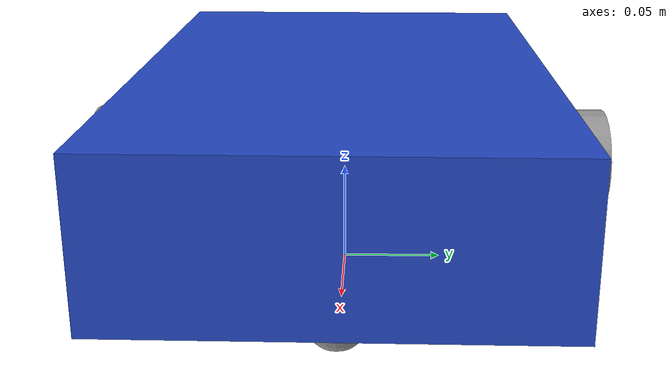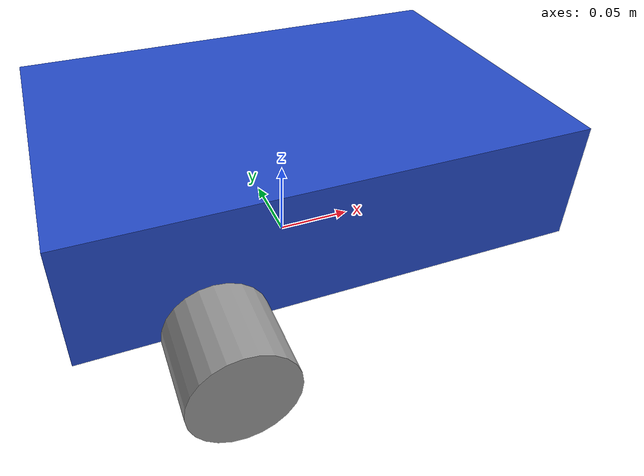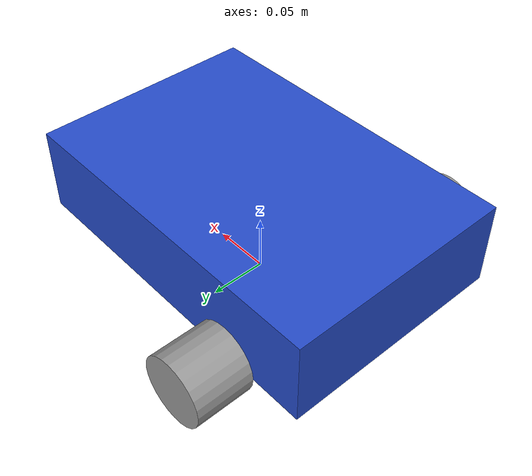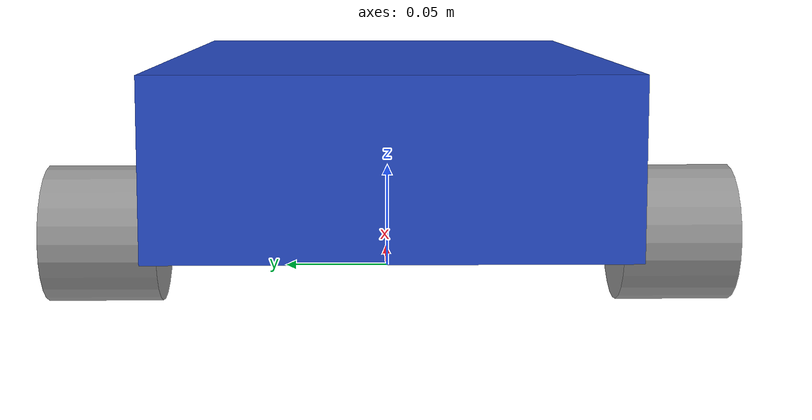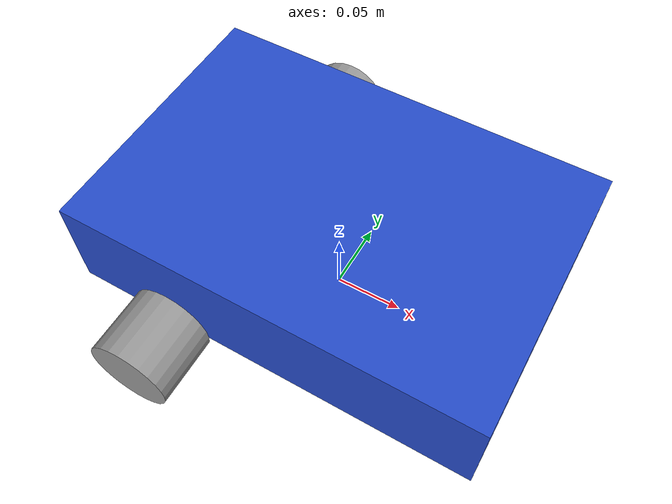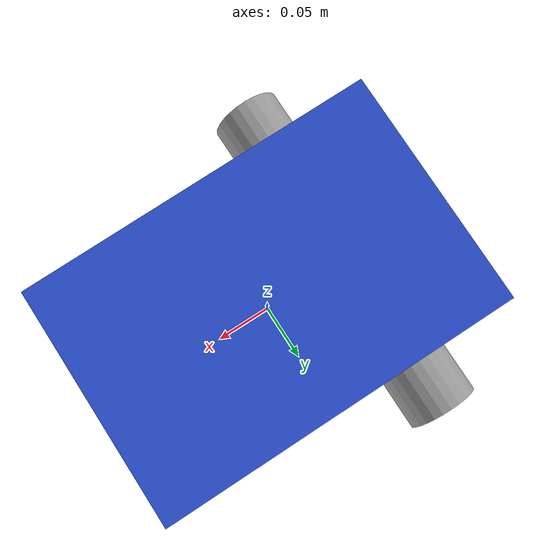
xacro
<?xml version="1.0"?>
<robot xmlns:xacro="http://www.ros.org/wiki/xacro">

    <xacro:property name="base_length" value="0.3" />
    <xacro:property name="base_width" value="0.2" />
    <xacro:property name="base_height" value="0.075" />
    <xacro:property name="wheel_radius" value="0.03" />
    <xacro:property name="wheel_length" value="0.05" />
    <xacro:property name="sphere_radius" value="${wheel_radius/2}" />

    <xacro:macro name="wheel_link" params="prefix sign">
        <link name="${prefix}_wheel_link">
            <visual>
                <geometry>
                    <cylinder radius="${wheel_radius}" length="${wheel_length}" />
                </geometry>
                <origin xyz="0 ${sign}${wheel_length / 2.0} 0" rpy="-${pi / 2.0} 0 0" />
                <material name="grey" />
            </visual>
            <collision>
                <geometry>
                    <sphere radius="${wheel_radius}" />
                </geometry>
                <origin xyz="0 ${sign}${wheel_length / 2.0} 0" rpy="0 0 0" />
            </collision>
            <xacro:wheel_inertia m="1.0" r="${wheel_radius}" l="${wheel_length}"
                                 o_xyz="0 ${sign}${wheel_length / 2.0} 0" o_rpy="-${pi / 2.0} 0 0" />
        </link>
    </xacro:macro>

    <xacro:wheel_link prefix="right" sign="-" />
    <xacro:wheel_link prefix="left" sign="" />

    <link name="base_footprint" />

    <link name="base_link">
        <visual>
            <geometry>
                <box size="${base_length} ${base_width} ${base_height}" />
            </geometry>
            <origin xyz="0 0 ${base_height / 2.0}" rpy="0 0 0" />
            <material name="blue" />
        </visual>
        <collision>
            <geometry>
                <box size="${base_length} ${base_width} ${base_height}" />
            </geometry>
            <origin xyz="0 0 ${base_height / 2.0}" rpy="0 0 0" />
        </collision>
        <xacro:box_inertia m="10.0" x="${base_length}" y="${base_width}" z="${base_height}"
                           o_xyz="0 0 ${base_height / 2.0}" o_rpy="0 0 0" />
    </link>

    <link name="caster_wheel_link">
        <visual>
            <geometry>
                <sphere radius="${sphere_radius}" />
            </geometry>
            <origin xyz="0 0 -${sphere_radius}" rpy="0 0 0" />
            <material name="grey" />
        </visual>
        <collision>
            <geometry>
                <sphere radius="${sphere_radius}" />
            </geometry>
            <origin xyz="0 0 -${sphere_radius}" rpy="0 0 0" />
        </collision>
        <xacro:caster_wheel_inertia m="0.5" r="${sphere_radius}" o_xyz="0 0 -${sphere_radius}" o_rpy="0 0 0" />
    </link>

    <joint name="base_joint" type="fixed">
        <parent link="base_footprint" />
        <child link="base_link" />
        <origin xyz="0 0 ${wheel_radius}" rpy="0 0 0" />
    </joint>

    <joint name="base_caster_wheel_joint" type="fixed">
        <parent link="base_link" />
        <child link="caster_wheel_link" />
        <origin xyz="${base_length / 3.0} 0 0" rpy="0 0 0" />
    </joint>

    <joint name="base_right_wheel_joint" type="continuous">
        <parent link="base_link" />
        <child link="right_wheel_link" />
        <origin xyz="-${base_length / 4.0} -${base_width / 2.0} 0" rpy="0 0 0" />
        <axis xyz="0 1 0" />
    </joint>

    <joint name="base_left_wheel_joint" type="continuous">
        <parent link="base_link" />
        <child link="left_wheel_link" />
        <origin xyz="-${base_length / 4.0} ${base_width / 2.0} 0" rpy="0 0 0" />
        <axis xyz="0 1 0" />
    </joint>

</robot>
